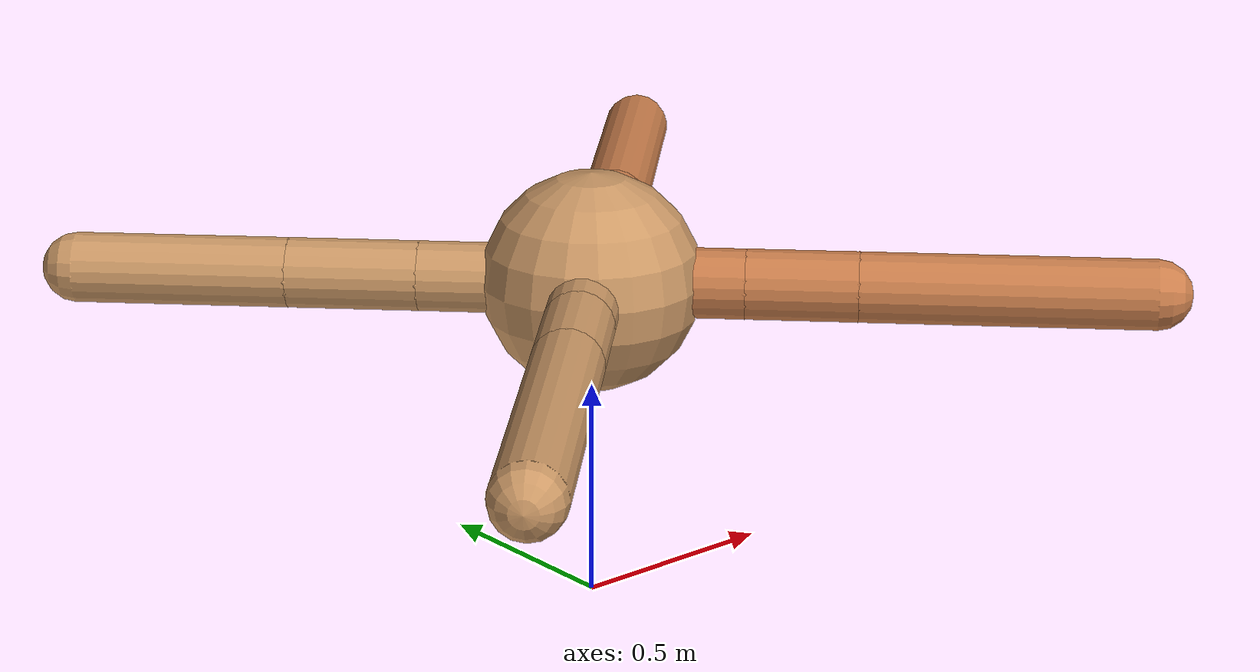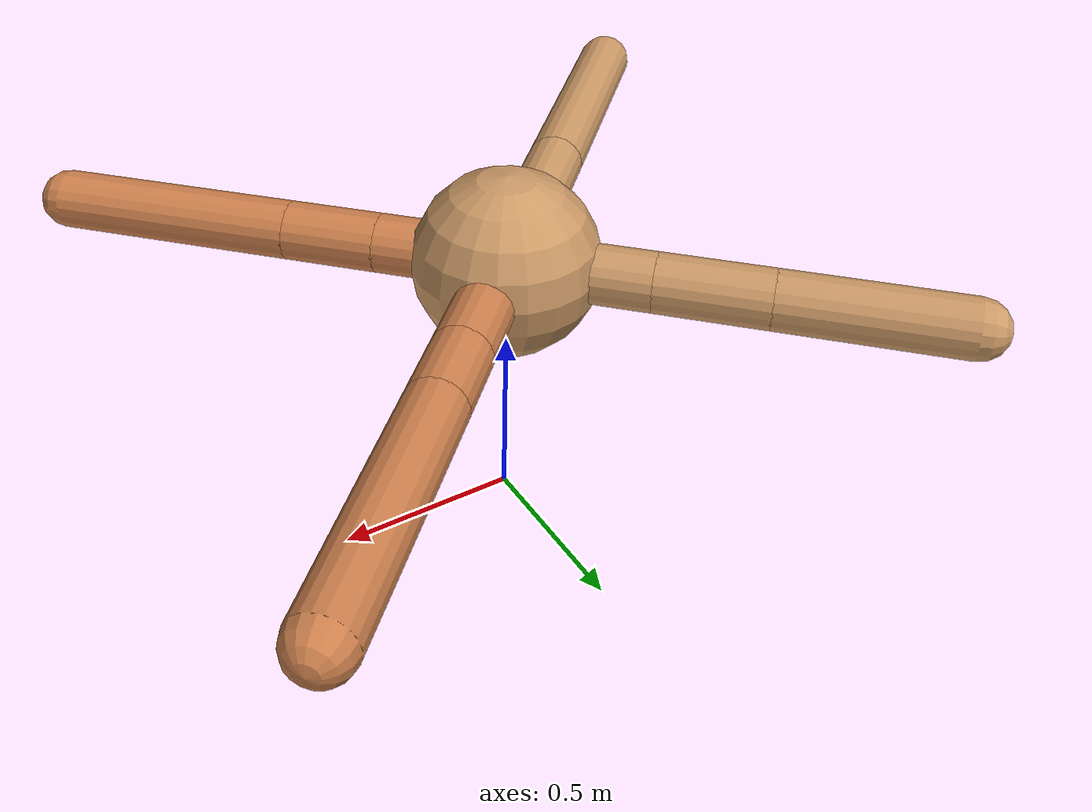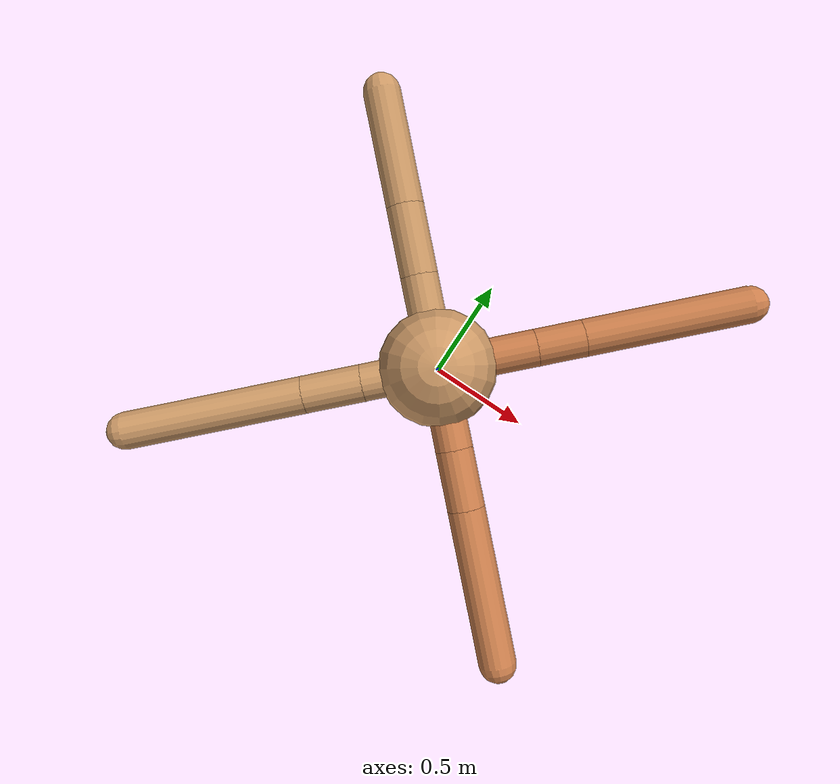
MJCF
<mujoco model="ant">
  <compiler angle="degree" coordinate="local" inertiafromgeom="true" />
  <option integrator="RK4" timestep="0.01" />
  <custom>
    <numeric data="0.0 0.0 0.55 1.0 0.0 0.0 0.0 0.0 1.0 0.0 -1.0 0.0 -1.0 0.0 1.0" name="init_qpos" />
  </custom>
  <default>
    <joint armature="1" damping="1" limited="true" />
    <geom conaffinity="0" condim="3" density="5.0" friction="1.5 0.1 0.1" margin="0.01" rgba="0.8 0.6 0.4 1" />
  </default>
  <worldbody>
    <body name="torso" pos="0 0 0.75">
      <geom name="torso_geom" pos="0 0 0" size="0.25" type="sphere" />

      <body name="front_left_leg" pos="0 0 0">
        <geom fromto="0.0 0.0 0.0 0.295679225729364 0.295679225729364 0.0" name="aux_1_geom" size="0.08" type="capsule" rgba=".8 .5 .3 1" />
        <body name="aux_1" pos="0.295679225729364 0.295679225729364 0.0">
          <joint axis="0 0 1" name="hip_1" pos="0.0 0.0 0.0" range="-40 40" type="hinge" />
          <geom fromto="0.0 0.0 0.0 0.14231570152135717 0.14231570152135717 0.0" name="left_leg_geom" size="0.08" type="capsule" rgba=".8 .5 .3 1" />
          <body pos="0.14231570152135717 0.14231570152135717 0.0" name="front_left_foot">
            <joint axis="-1 1 0" name="ankle_1" pos="0.0 0.0 0.0" range="30 100" type="hinge" />
            <geom fromto="0.0 0.0 0.0 0.4980614365680069 0.4980614365680069 0.0" name="left_ankle_geom" size="0.08" type="capsule" rgba=".8 .5 .3 1" />
          </body>
        </body>
      </body>
      <body name="front_right_leg" pos="0 0 0">
        <geom fromto="0.0 0.0 0.0 -0.2748651650266922 0.2748651650266922 0.0" name="aux_2_geom" size="0.08" type="capsule" />
        <body name="aux_2" pos="-0.2748651650266922 0.2748651650266922 0.0">
          <joint axis="0 0 1" name="hip_2" pos="0.0 0.0 0.0" range="-40 40" type="hinge" />
          <geom fromto="0.0 0.0 0.0 -0.2100613675532924 0.2100613675532924 0.0" name="right_leg_geom" size="0.08" type="capsule" />
          <body pos="-0.2100613675532924 0.2100613675532924 0.0" name="front_right_foot">
            <joint axis="1 1 0" name="ankle_2" pos="0.0 0.0 0.0" range="-100 -30" type="hinge" />
            <geom fromto="0.0 0.0 0.0 -0.34313303235522286 0.34313303235522286 0.0" name="right_ankle_geom" size="0.08" type="capsule" />
          </body>
        </body>
      </body>
      <body name="left_back_leg" pos="0 0 0">
        <geom fromto="0.0 0.0 0.0 -0.22574628185417955 -0.22574628185417955 0.0" name="aux_3_geom" size="0.08" type="capsule" />
        <body name="aux_3" pos="-0.22574628185417955 -0.22574628185417955 0.0">
          <joint axis="0 0 1" name="hip_3" pos="0.0 0.0 0.0" range="-40 40" type="hinge" />
          <geom fromto="0.0 0.0 0.0 -0.1759149117727794 -0.1759149117727794 0.0" name="back_leg_geom" size="0.08" type="capsule" />
          <body pos="-0.1759149117727794 -0.1759149117727794 0.0" name="left_back_foot">
            <joint axis="-1 1 0" name="ankle_3" pos="0.0 0.0 0.0" range="-100 -30" type="hinge" />
            <geom fromto="0.0 0.0 0.0 -0.5335754664926377 -0.5335754664926377 0.0" name="third_ankle_geom" size="0.08" type="capsule" />
          </body>
        </body>
      </body>
      <body name="right_back_leg" pos="0 0 0">
        <geom fromto="0.0 0.0 0.0 0.24465119278266823 -0.24465119278266823 0.0" name="aux_4_geom" size="0.08" type="capsule" rgba=".8 .5 .3 1" />
        <body name="aux_4" pos="0.24465119278266823 -0.24465119278266823 0.0">
          <joint axis="0 0 1" name="hip_4" pos="0.0 0.0 0.0" range="-40 40" type="hinge" />
          <geom fromto="0.0 0.0 0.0 0.17843348743845763 -0.17843348743845763 0.0" name="rightback_leg_geom" size="0.08" type="capsule" rgba=".8 .5 .3 1" />
          <body pos="0.17843348743845763 -0.17843348743845763 0.0" name="right_back_foot">
            <joint axis="1 1 0" name="ankle_4" pos="0.0 0.0 0.0" range="30 100" type="hinge" />
            <geom fromto="0.0 0.0 0.0 0.465832016597145 -0.465832016597145 0.0" name="fourth_ankle_geom" size="0.08" type="capsule" rgba=".8 .5 .3 1" />
          </body>
        </body>
      </body>
    </body>
  </worldbody>
  <actuator>
    <motor ctrllimited="true" ctrlrange="-1.0 1.0" joint="hip_4" gear="150" />
    <motor ctrllimited="true" ctrlrange="-1.0 1.0" joint="ankle_4" gear="150" />
    <motor ctrllimited="true" ctrlrange="-1.0 1.0" joint="hip_1" gear="150" />
    <motor ctrllimited="true" ctrlrange="-1.0 1.0" joint="ankle_1" gear="150" />
    <motor ctrllimited="true" ctrlrange="-1.0 1.0" joint="hip_2" gear="150" />
    <motor ctrllimited="true" ctrlrange="-1.0 1.0" joint="ankle_2" gear="150" />
    <motor ctrllimited="true" ctrlrange="-1.0 1.0" joint="hip_3" gear="150" />
    <motor ctrllimited="true" ctrlrange="-1.0 1.0" joint="ankle_3" gear="150" />
  </actuator>
</mujoco>
